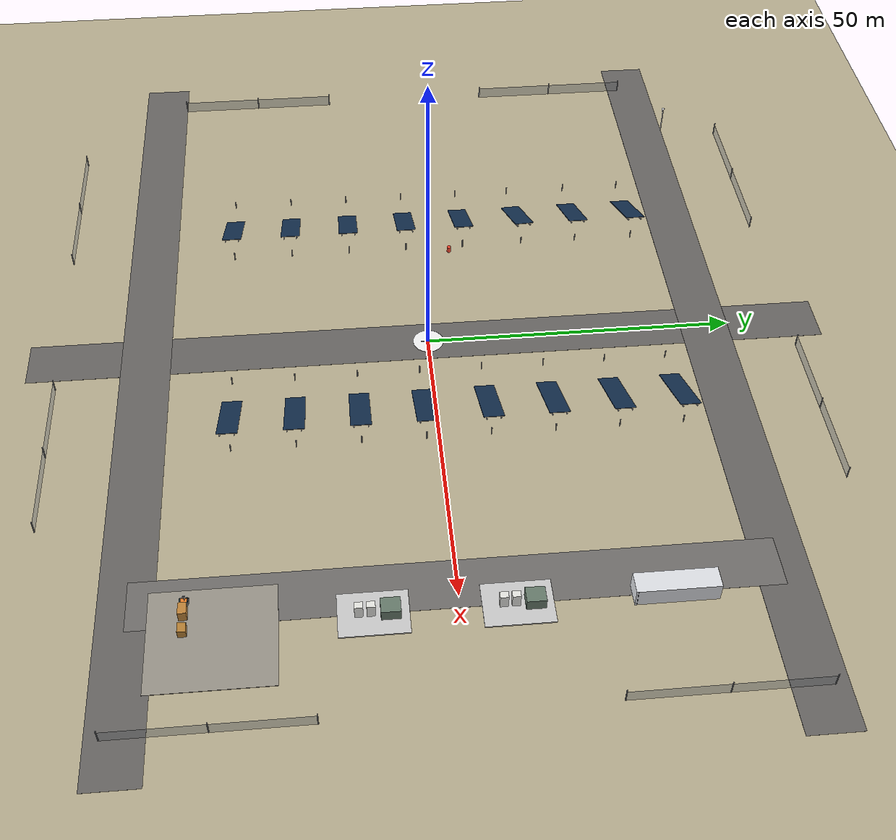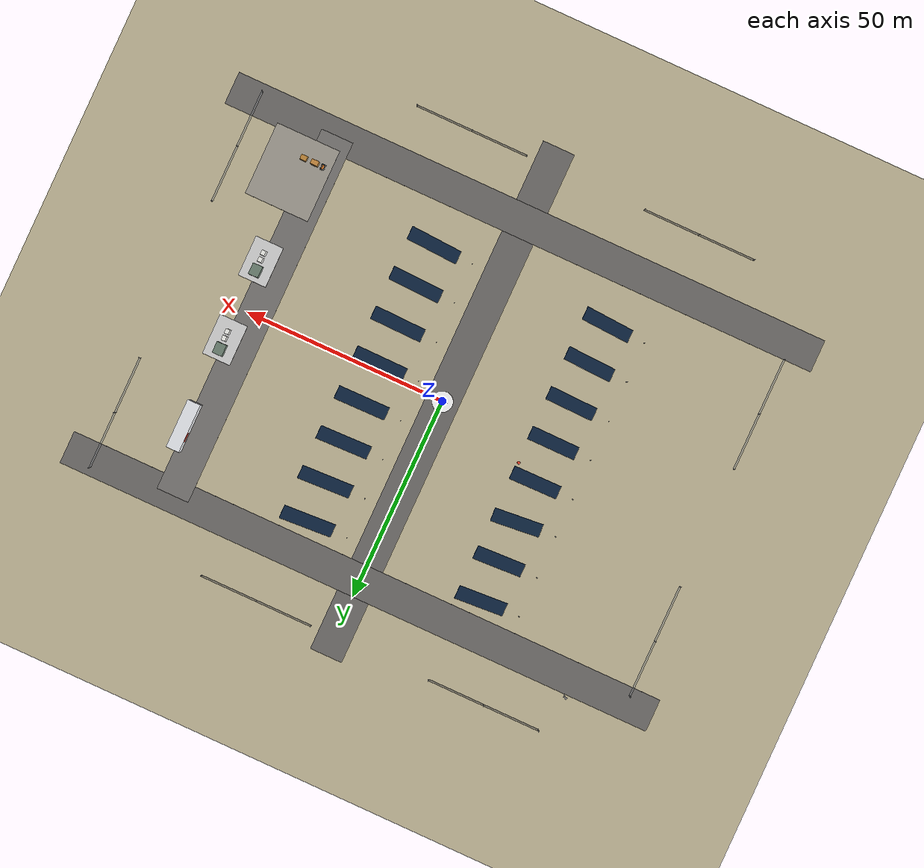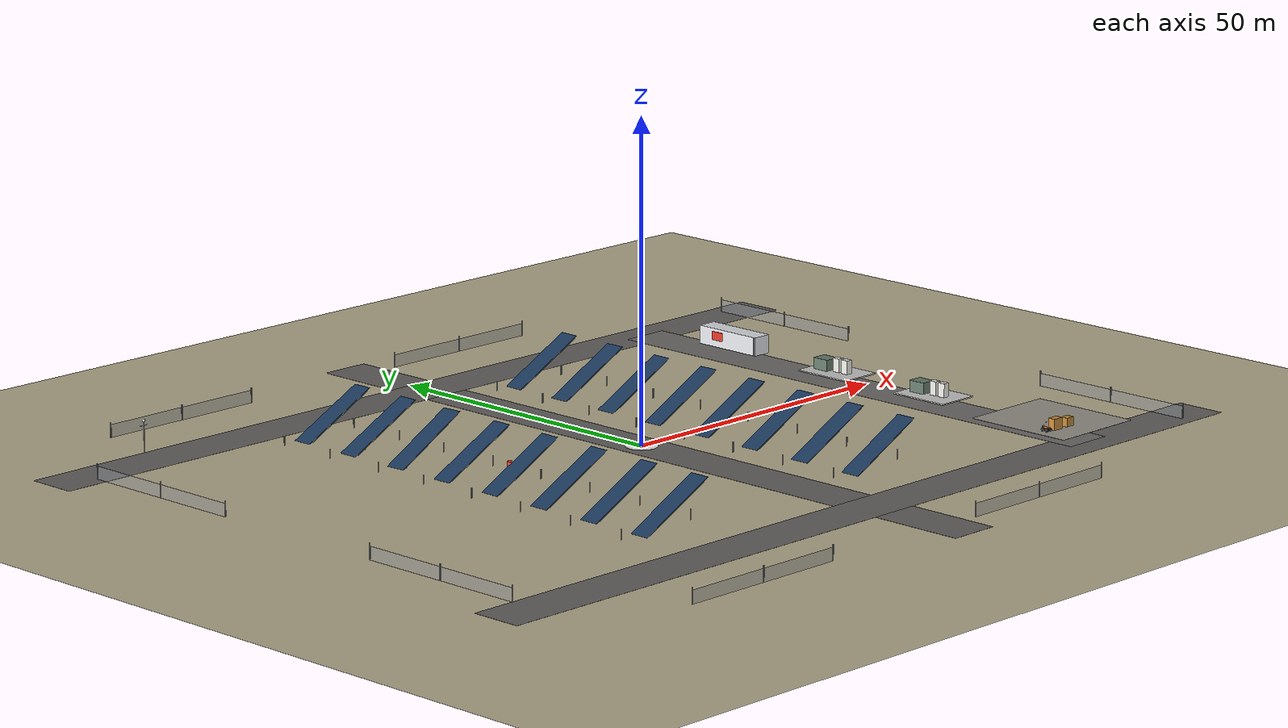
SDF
<sdf version="1.9">
 <world name="solar_farm_demo">
  <gravity>0 0 -9.8</gravity>
  <magnetic_field>6.0e-6 2.3e-5 -4.2e-5</magnetic_field>
  <atmosphere type="adiabatic"/>
  <plugin filename="gz-sim-physics-system" name="gz::sim::systems::Physics"/>
  <plugin filename="gz-sim-user-commands-system" name="gz::sim::systems::UserCommands"/>
  <plugin filename="gz-sim-scene-broadcaster-system" name="gz::sim::systems::SceneBroadcaster"/>
  <plugin filename="gz-sim-contact-system" name="gz::sim::systems::Contact"/>
  <plugin filename="gz-sim-imu-system" name="gz::sim::systems::Imu"/>
  <plugin filename="gz-sim-air-pressure-system" name="gz::sim::systems::AirPressure"/>
  <plugin filename="gz-sim-apply-link-wrench-system" name="gz::sim::systems::ApplyLinkWrench"/>
  <plugin filename="gz-sim-navsat-system" name="gz::sim::systems::NavSat"/>
  <plugin filename="gz-sim-sensors-system" name="gz::sim::systems::Sensors">
   <render_engine>ogre2</render_engine>
  </plugin>
  <scene>
   <ambient>0.8 0.8 0.8 1.0</ambient>
   <background>0.60 0.76 0.92 1.0</background>
   <shadows>true</shadows>
   <grid>false</grid>
  </scene>
  <light type="directional" name="sun">
   <pose>0 0 20 0 0 0</pose>
   <diffuse>0.9 0.9 0.9 1</diffuse>
   <specular>0.2 0.2 0.2 1</specular>
   <attenuation>
    <range>1000</range>
    <constant>0.9</constant>
    <linear>0.01</linear>
    <quadratic>0.001</quadratic>
   </attenuation>
   <direction>-0.35 0.2 -0.9</direction>
  </light>
  <model name="ground_plane">
   <static>true</static>
   <link name="ground_link">
    <collision name="collision">
     <geometry><plane><normal>0 0 1</normal><size>220 220</size></plane></geometry>
    </collision>
    <visual name="visual">
     <geometry><plane><normal>0 0 1</normal><size>220 220</size></plane></geometry>
     <material><ambient>0.72 0.69 0.56 1</ambient><diffuse>0.74 0.70 0.58 1</diffuse></material>
    </visual>
   </link>
  </model>
  <model name="service_loop_road">
   <static>true</static>
   <link name="road_link">
    <visual name="north_south_road">
     <pose>0 0 0.01 0 0 0</pose>
     <geometry><box><size>8 130 0.02</size></box></geometry>
     <material><ambient>0.36 0.35 0.34 1</ambient><diffuse>0.42 0.41 0.40 1</diffuse></material>
    </visual>
    <visual name="east_west_road_north">
     <pose>0 46 0.011 0 0 0</pose>
     <geometry><box><size>150 8 0.02</size></box></geometry>
     <material><ambient>0.36 0.35 0.34 1</ambient><diffuse>0.42 0.41 0.40 1</diffuse></material>
    </visual>
    <visual name="east_west_road_south">
     <pose>0 -46 0.011 0 0 0</pose>
     <geometry><box><size>150 8 0.02</size></box></geometry>
     <material><ambient>0.36 0.35 0.34 1</ambient><diffuse>0.42 0.41 0.40 1</diffuse></material>
    </visual>
    <visual name="spur_road_east">
     <pose>48 0 0.012 0 0 0</pose>
     <geometry><box><size>8 92 0.02</size></box></geometry>
     <material><ambient>0.39 0.38 0.37 1</ambient><diffuse>0.46 0.45 0.44 1</diffuse></material>
    </visual>
   </link>
  </model>
  <model name="uav_spawn_pad">
   <static>true</static>
   <link name="pad_link">
    <visual name="pad_base">
     <pose>0 0 0.015 0 0 0</pose>
     <geometry><cylinder><radius>2.5</radius><length>0.03</length></cylinder></geometry>
     <material><ambient>0.92 0.92 0.92 1</ambient><diffuse>0.98 0.98 0.98 1</diffuse></material>
    </visual>
    <visual name="pad_ring">
     <pose>0 0 0.02 0 0 0</pose>
     <geometry><cylinder><radius>2.15</radius><length>0.01</length></cylinder></geometry>
     <material><ambient>0.88 0.32 0.08 1</ambient><diffuse>0.96 0.40 0.10 1</diffuse></material>
    </visual>
    <visual name="pad_marker_x">
     <pose>0 0 0.03 0 0 0</pose>
     <geometry><box><size>2.4 0.18 0.02</size></box></geometry>
     <material><ambient>0.10 0.10 0.10 1</ambient><diffuse>0.16 0.16 0.16 1</diffuse></material>
    </visual>
    <visual name="pad_marker_y">
     <pose>0 0 0.03 0 0 1.5708</pose>
     <geometry><box><size>2.4 0.18 0.02</size></box></geometry>
     <material><ambient>0.10 0.10 0.10 1</ambient><diffuse>0.16 0.16 0.16 1</diffuse></material>
    </visual>
   </link>
  </model>
  <include>
   <uri>model://weather_station</uri>
   <name>weather_station_01</name>
   <pose>-54 50 0 0 0 0</pose>
  </include>
  <include>
   <uri>model://battery_container</uri>
   <name>battery_container_01</name>
   <pose>52 30 0 0 0 1.5708</pose>
  </include>
  <include>
   <uri>model://inspection_rover</uri>
   <name>inspection_rover_01</name>
   <pose>48 -38 0.05 0 0 1.5708</pose>
  </include>
  <include><uri>model://inverter_pad</uri><name>inverter_pad_01</name><pose>52 8 0 0 0 1.5708</pose></include>
  <include><uri>model://inverter_pad</uri><name>inverter_pad_02</name><pose>52 -12 0 0 0 1.5708</pose></include>
  <model name="maintenance_laydown">
   <static>true</static>
   <pose>54 -34 0 0 0 0</pose>
   <link name="laydown_link">
    <visual name="pad">
     <geometry><box><size>16 18 0.08</size></box></geometry>
     <material><ambient>0.57 0.55 0.52 1</ambient><diffuse>0.62 0.60 0.56 1</diffuse></material>
    </visual>
    <visual name="crate_01">
     <pose>-4 -4 0.9 0 0 0</pose>
     <geometry><box><size>1.8 1.2 1.8</size></box></geometry>
     <material><ambient>0.70 0.48 0.22 1</ambient><diffuse>0.78 0.54 0.24 1</diffuse></material>
    </visual>
    <visual name="crate_02">
     <pose>-1.2 -4 0.7 0 0 0</pose>
     <geometry><box><size>1.5 1.2 1.4</size></box></geometry>
     <material><ambient>0.68 0.47 0.20 1</ambient><diffuse>0.75 0.53 0.22 1</diffuse></material>
    </visual>
   </link>
  </model>
  <model name="anomaly_marker_row_06">
   <static>true</static>
   <pose>-22 5.5 0 0 0 0</pose>
   <link name="marker_link">
    <visual name="cone">
     <pose>0 0 0.5 0 0 0</pose>
     <geometry><cylinder><radius>0.35</radius><length>1.0</length></cylinder></geometry>
     <material><ambient>0.85 0.22 0.14 1</ambient><diffuse>0.95 0.28 0.18 1</diffuse></material>
    </visual>
   </link>
  </model>
  <include><uri>model://solar_panel_row</uri><name>panel_row_01</name><pose>-30 -32 0 0 0 0</pose></include>
  <include><uri>model://solar_panel_row</uri><name>panel_row_02</name><pose>-30 -22 0 0 0 0</pose></include>
  <include><uri>model://solar_panel_row</uri><name>panel_row_03</name><pose>-30 -12 0 0 0 0</pose></include>
  <include><uri>model://solar_panel_row</uri><name>panel_row_04</name><pose>-30 -2 0 0 0 0</pose></include>
  <include><uri>model://solar_panel_row</uri><name>panel_row_05</name><pose>-30 8 0 0 0 0</pose></include>
  <include><uri>model://solar_panel_row</uri><name>panel_row_06</name><pose>-30 18 0 0 0 0.06</pose></include>
  <include><uri>model://solar_panel_row</uri><name>panel_row_07</name><pose>-30 28 0 0 0 0</pose></include>
  <include><uri>model://solar_panel_row</uri><name>panel_row_08</name><pose>-30 38 0 0 0 0</pose></include>
  <include><uri>model://solar_panel_row</uri><name>panel_row_09</name><pose>14 -32 0 0 0 0</pose></include>
  <include><uri>model://solar_panel_row</uri><name>panel_row_10</name><pose>14 -22 0 0 0 0</pose></include>
  <include><uri>model://solar_panel_row</uri><name>panel_row_11</name><pose>14 -12 0 0 0 0</pose></include>
  <include><uri>model://solar_panel_row</uri><name>panel_row_12</name><pose>14 -2 0 0 0 0</pose></include>
  <include><uri>model://solar_panel_row</uri><name>panel_row_13</name><pose>14 8 0 0 0 0</pose></include>
  <include><uri>model://solar_panel_row</uri><name>panel_row_14</name><pose>14 18 0 0 0 0</pose></include>
  <include><uri>model://solar_panel_row</uri><name>panel_row_15</name><pose>14 28 0 0 0 0</pose></include>
  <include><uri>model://solar_panel_row</uri><name>panel_row_16</name><pose>14 38 0 0 0 0</pose></include>
  <include><uri>model://fence_segment</uri><name>north_fence_west</name><pose>-38 60 0 0 0 0</pose></include>
  <include><uri>model://fence_segment</uri><name>north_fence_east</name><pose>20 60 0 0 0 0</pose></include>
  <include><uri>model://fence_segment</uri><name>south_fence_west</name><pose>-38 -60 0 0 0 0</pose></include>
  <include><uri>model://fence_segment</uri><name>south_fence_east</name><pose>20 -60 0 0 0 0</pose></include>
  <include>
   <uri>model://fence_segment</uri>
   <name>west_fence_north</name>
   <pose>-68 30 0 0 0 1.5708</pose>
  </include>
  <include>
   <uri>model://fence_segment</uri>
   <name>west_fence_south</name>
   <pose>-68 -28 0 0 0 1.5708</pose>
  </include>
  <include>
   <uri>model://fence_segment</uri>
   <name>east_fence_upper</name>
   <pose>68 34 0 0 0 1.5708</pose>
  </include>
  <include>
   <uri>model://fence_segment</uri>
   <name>east_fence_lower</name>
   <pose>68 -34 0 0 0 1.5708</pose>
  </include>
 </world>
</sdf>

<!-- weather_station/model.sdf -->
<sdf version="1.9">
  <model name="weather_station">
    <static>true</static>
    <link name="station_link">
      <collision name="mast_collision">
        <pose>0 0 2.4 0 0 0</pose>
        <geometry>
          <cylinder>
            <radius>0.08</radius>
            <length>4.8</length>
          </cylinder>
        </geometry>
      </collision>

      <visual name="mast_visual">
        <pose>0 0 2.4 0 0 0</pose>
        <geometry>
          <cylinder>
            <radius>0.08</radius>
            <length>4.8</length>
          </cylinder>
        </geometry>
        <material>
          <ambient>0.70 0.70 0.71 1</ambient>
          <diffuse>0.82 0.82 0.83 1</diffuse>
        </material>
      </visual>

      <visual name="sensor_head">
        <pose>0 0 4.95 0 0 0</pose>
        <geometry>
          <sphere>
            <radius>0.25</radius>
          </sphere>
        </geometry>
        <material>
          <ambient>0.94 0.94 0.94 1</ambient>
          <diffuse>0.98 0.98 0.98 1</diffuse>
        </material>
      </visual>

      <visual name="cross_arm">
        <pose>0 0 4.2 0 0 0</pose>
        <geometry>
          <box>
            <size>1.4 0.08 0.08</size>
          </box>
        </geometry>
        <material>
          <ambient>0.78 0.78 0.80 1</ambient>
          <diffuse>0.88 0.88 0.90 1</diffuse>
        </material>
      </visual>
    </link>
  </model>
</sdf>

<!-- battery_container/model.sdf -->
<sdf version="1.9">
  <model name="battery_container">
    <static>true</static>
    <link name="container_link">
      <collision name="container_collision">
        <pose>0 0 1.5 0 0 0</pose>
        <geometry>
          <box>
            <size>12 3.2 3.0</size>
          </box>
        </geometry>
      </collision>

      <visual name="container_visual">
        <pose>0 0 1.5 0 0 0</pose>
        <geometry>
          <box>
            <size>12 3.2 3.0</size>
          </box>
        </geometry>
        <material>
          <ambient>0.83 0.84 0.86 1</ambient>
          <diffuse>0.90 0.91 0.93 1</diffuse>
        </material>
      </visual>

      <visual name="door_line_left">
        <pose>-5.7 0 1.5 0 0 0</pose>
        <geometry>
          <box>
            <size>0.05 3.25 2.9</size>
          </box>
        </geometry>
        <material>
          <ambient>0.25 0.26 0.28 1</ambient>
          <diffuse>0.30 0.31 0.33 1</diffuse>
        </material>
      </visual>

      <visual name="thermal_alert_patch">
        <pose>2.2 1.63 1.8 0 0 0</pose>
        <geometry>
          <box>
            <size>2.2 0.04 1.4</size>
          </box>
        </geometry>
        <material>
          <ambient>0.76 0.16 0.12 1</ambient>
          <diffuse>0.88 0.22 0.16 1</diffuse>
          <emissive>0.25 0.04 0.02 1</emissive>
        </material>
      </visual>
    </link>
  </model>
</sdf>

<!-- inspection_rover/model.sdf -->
<sdf version="1.9">
  <model name="inspection_rover">
    <static>false</static>
    <self_collide>false</self_collide>

    <link name="base_link">
      <pose>0 0 0.32 0 0 0</pose>
      <inertial>
        <mass>38.0</mass>
        <inertia>
          <ixx>2.0</ixx>
          <iyy>3.0</iyy>
          <izz>3.8</izz>
          <ixy>0.0</ixy>
          <ixz>0.0</ixz>
          <iyz>0.0</iyz>
        </inertia>
      </inertial>

      <collision name="chassis_collision">
        <geometry>
          <box>
            <size>1.25 0.82 0.34</size>
          </box>
        </geometry>
      </collision>

      <visual name="chassis_visual">
        <geometry>
          <box>
            <size>1.25 0.82 0.34</size>
          </box>
        </geometry>
        <material>
          <ambient>0.10 0.14 0.15 1</ambient>
          <diffuse>0.13 0.20 0.21 1</diffuse>
          <specular>0.05 0.07 0.08 1</specular>
        </material>
      </visual>

      <visual name="top_deck">
        <pose>0.05 0 0.23 0 0 0</pose>
        <geometry>
          <box>
            <size>0.95 0.62 0.10</size>
          </box>
        </geometry>
        <material>
          <ambient>0.88 0.46 0.12 1</ambient>
          <diffuse>0.96 0.52 0.16 1</diffuse>
        </material>
      </visual>

      <visual name="front_bumper">
        <pose>0.70 0 0.0 0 0 0</pose>
        <geometry>
          <box>
            <size>0.10 0.92 0.18</size>
          </box>
        </geometry>
        <material>
          <ambient>0.04 0.04 0.04 1</ambient>
          <diffuse>0.06 0.06 0.06 1</diffuse>
        </material>
      </visual>

      <sensor name="base_imu" type="imu">
        <pose>0 0 0.28 0 0 0</pose>
        <topic>/ugv_1/imu</topic>
        <always_on>true</always_on>
        <update_rate>100</update_rate>
      </sensor>
    </link>

    <link name="left_front_wheel">
      <pose>0.42 0.48 0.22 1.5708 0 0</pose>
      <inertial>
        <mass>2.0</mass>
        <inertia>
          <ixx>0.04</ixx>
          <iyy>0.04</iyy>
          <izz>0.04</izz>
          <ixy>0.0</ixy>
          <ixz>0.0</ixz>
          <iyz>0.0</iyz>
        </inertia>
      </inertial>
      <collision name="collision">
        <geometry>
          <cylinder>
            <radius>0.22</radius>
            <length>0.16</length>
          </cylinder>
        </geometry>
        <surface>
          <friction>
            <ode>
              <mu>1.0</mu>
              <mu2>1.0</mu2>
            </ode>
          </friction>
        </surface>
      </collision>
      <visual name="visual">
        <geometry>
          <cylinder>
            <radius>0.22</radius>
            <length>0.16</length>
          </cylinder>
        </geometry>
        <material>
          <ambient>0.02 0.02 0.02 1</ambient>
          <diffuse>0.03 0.03 0.03 1</diffuse>
        </material>
      </visual>
    </link>

    <link name="left_rear_wheel">
      <pose>-0.42 0.48 0.22 1.5708 0 0</pose>
      <inertial>
        <mass>2.0</mass>
        <inertia>
          <ixx>0.04</ixx>
          <iyy>0.04</iyy>
          <izz>0.04</izz>
          <ixy>0.0</ixy>
          <ixz>0.0</ixz>
          <iyz>0.0</iyz>
        </inertia>
      </inertial>
      <collision name="collision">
        <geometry>
          <cylinder>
            <radius>0.22</radius>
            <length>0.16</length>
          </cylinder>
        </geometry>
        <surface>
          <friction>
            <ode>
              <mu>1.0</mu>
              <mu2>1.0</mu2>
            </ode>
          </friction>
        </surface>
      </collision>
      <visual name="visual">
        <geometry>
          <cylinder>
            <radius>0.22</radius>
            <length>0.16</length>
          </cylinder>
        </geometry>
        <material>
          <ambient>0.02 0.02 0.02 1</ambient>
          <diffuse>0.03 0.03 0.03 1</diffuse>
        </material>
      </visual>
    </link>

    <link name="right_front_wheel">
      <pose>0.42 -0.48 0.22 1.5708 0 0</pose>
      <inertial>
        <mass>2.0</mass>
        <inertia>
          <ixx>0.04</ixx>
          <iyy>0.04</iyy>
          <izz>0.04</izz>
          <ixy>0.0</ixy>
          <ixz>0.0</ixz>
          <iyz>0.0</iyz>
        </inertia>
      </inertial>
      <collision name="collision">
        <geometry>
          <cylinder>
            <radius>0.22</radius>
            <length>0.16</length>
          </cylinder>
        </geometry>
        <surface>
          <friction>
            <ode>
              <mu>1.0</mu>
              <mu2>1.0</mu2>
            </ode>
          </friction>
        </surface>
      </collision>
      <visual name="visual">
        <geometry>
          <cylinder>
            <radius>0.22</radius>
            <length>0.16</length>
          </cylinder>
        </geometry>
        <material>
          <ambient>0.02 0.02 0.02 1</ambient>
          <diffuse>0.03 0.03 0.03 1</diffuse>
        </material>
      </visual>
    </link>

    <link name="right_rear_wheel">
      <pose>-0.42 -0.48 0.22 1.5708 0 0</pose>
      <inertial>
        <mass>2.0</mass>
        <inertia>
          <ixx>0.04</ixx>
          <iyy>0.04</iyy>
          <izz>0.04</izz>
          <ixy>0.0</ixy>
          <ixz>0.0</ixz>
          <iyz>0.0</iyz>
        </inertia>
      </inertial>
      <collision name="collision">
        <geometry>
          <cylinder>
            <radius>0.22</radius>
            <length>0.16</length>
          </cylinder>
        </geometry>
        <surface>
          <friction>
            <ode>
              <mu>1.0</mu>
              <mu2>1.0</mu2>
            </ode>
          </friction>
        </surface>
      </collision>
      <visual name="visual">
        <geometry>
          <cylinder>
            <radius>0.22</radius>
            <length>0.16</length>
          </cylinder>
        </geometry>
        <material>
          <ambient>0.02 0.02 0.02 1</ambient>
          <diffuse>0.03 0.03 0.03 1</diffuse>
        </material>
      </visual>
    </link>

    <joint name="left_front_wheel_joint" type="revolute">
      <parent>base_link</parent>
      <child>left_front_wheel</child>
      <axis>
        <xyz>0 1 0</xyz>
        <limit>
          <lower>-1e16</lower>
          <upper>1e16</upper>
        </limit>
      </axis>
    </joint>

    <joint name="left_rear_wheel_joint" type="revolute">
      <parent>base_link</parent>
      <child>left_rear_wheel</child>
      <axis>
        <xyz>0 1 0</xyz>
        <limit>
          <lower>-1e16</lower>
          <upper>1e16</upper>
        </limit>
      </axis>
    </joint>

    <joint name="right_front_wheel_joint" type="revolute">
      <parent>base_link</parent>
      <child>right_front_wheel</child>
      <axis>
        <xyz>0 1 0</xyz>
        <limit>
          <lower>-1e16</lower>
          <upper>1e16</upper>
        </limit>
      </axis>
    </joint>

    <joint name="right_rear_wheel_joint" type="revolute">
      <parent>base_link</parent>
      <child>right_rear_wheel</child>
      <axis>
        <xyz>0 1 0</xyz>
        <limit>
          <lower>-1e16</lower>
          <upper>1e16</upper>
        </limit>
      </axis>
    </joint>

    <link name="sensor_mast">
      <pose>0.12 0 0.95 0 0 0</pose>
      <inertial>
        <mass>1.5</mass>
        <inertia>
          <ixx>0.08</ixx>
          <iyy>0.08</iyy>
          <izz>0.02</izz>
          <ixy>0.0</ixy>
          <ixz>0.0</ixz>
          <iyz>0.0</iyz>
        </inertia>
      </inertial>
      <collision name="mast_collision">
        <geometry>
          <cylinder>
            <radius>0.045</radius>
            <length>0.9</length>
          </cylinder>
        </geometry>
      </collision>
      <visual name="mast_visual">
        <geometry>
          <cylinder>
            <radius>0.045</radius>
            <length>0.9</length>
          </cylinder>
        </geometry>
        <material>
          <ambient>0.65 0.65 0.66 1</ambient>
          <diffuse>0.78 0.78 0.80 1</diffuse>
        </material>
      </visual>
    </link>

    <joint name="sensor_mast_joint" type="fixed">
      <parent>base_link</parent>
      <child>sensor_mast</child>
    </joint>

    <link name="lidar_link">
      <pose>0.12 0 1.45 0 0 0</pose>
      <inertial>
        <mass>0.7</mass>
        <inertia>
          <ixx>0.01</ixx>
          <iyy>0.01</iyy>
          <izz>0.01</izz>
          <ixy>0.0</ixy>
          <ixz>0.0</ixz>
          <iyz>0.0</iyz>
        </inertia>
      </inertial>
      <collision name="lidar_collision">
        <geometry>
          <cylinder>
            <radius>0.16</radius>
            <length>0.12</length>
          </cylinder>
        </geometry>
      </collision>
      <visual name="lidar_visual">
        <geometry>
          <cylinder>
            <radius>0.16</radius>
            <length>0.12</length>
          </cylinder>
        </geometry>
        <material>
          <ambient>0.02 0.02 0.025 1</ambient>
          <diffuse>0.05 0.05 0.06 1</diffuse>
        </material>
      </visual>
      <sensor name="lidar" type="gpu_lidar">
        <pose>0 0 0.08 0 0 0</pose>
        <topic>/ugv_1/scan</topic>
        <always_on>true</always_on>
        <update_rate>10</update_rate>
        <lidar>
          <scan>
            <horizontal>
              <samples>720</samples>
              <resolution>1</resolution>
              <min_angle>-3.14159</min_angle>
              <max_angle>3.14159</max_angle>
            </horizontal>
          </scan>
          <range>
            <min>0.12</min>
            <max>40.0</max>
            <resolution>0.02</resolution>
          </range>
          <noise>
            <type>gaussian</type>
            <mean>0.0</mean>
            <stddev>0.01</stddev>
          </noise>
        </lidar>
      </sensor>
    </link>

    <joint name="lidar_joint" type="fixed">
      <parent>sensor_mast</parent>
      <child>lidar_link</child>
    </joint>

    <link name="camera_link">
      <pose>0.72 0 0.72 0 0 0</pose>
      <inertial>
        <mass>0.9</mass>
        <inertia>
          <ixx>0.02</ixx>
          <iyy>0.02</iyy>
          <izz>0.02</izz>
          <ixy>0.0</ixy>
          <ixz>0.0</ixz>
          <iyz>0.0</iyz>
        </inertia>
      </inertial>
      <collision name="camera_collision">
        <geometry>
          <box>
            <size>0.18 0.36 0.16</size>
          </box>
        </geometry>
      </collision>
      <visual name="camera_housing">
        <geometry>
          <box>
            <size>0.18 0.36 0.16</size>
          </box>
        </geometry>
        <material>
          <ambient>0.08 0.08 0.085 1</ambient>
          <diffuse>0.11 0.11 0.12 1</diffuse>
        </material>
      </visual>
      <visual name="camera_lens">
        <pose>0.10 0 0 0 1.5708 0</pose>
        <geometry>
          <cylinder>
            <radius>0.065</radius>
            <length>0.035</length>
          </cylinder>
        </geometry>
        <material>
          <ambient>0.01 0.01 0.012 1</ambient>
          <diffuse>0.02 0.02 0.025 1</diffuse>
        </material>
      </visual>
      <sensor name="rgb_camera" type="camera">
        <pose>0.11 0 0 0 0 0</pose>
        <topic>/ugv_1/camera/image_raw</topic>
        <always_on>true</always_on>
        <update_rate>20</update_rate>
        <camera>
          <horizontal_fov>1.047</horizontal_fov>
          <image>
            <width>1280</width>
            <height>720</height>
            <format>R8G8B8</format>
          </image>
          <clip>
            <near>0.1</near>
            <far>80.0</far>
          </clip>
        </camera>
      </sensor>
    </link>

    <joint name="camera_joint" type="fixed">
      <parent>base_link</parent>
      <child>camera_link</child>
    </joint>

    <link name="depth_camera_link">
      <pose>0.70 0 0.52 0 0 0</pose>
      <inertial>
        <mass>0.8</mass>
        <inertia>
          <ixx>0.02</ixx>
          <iyy>0.02</iyy>
          <izz>0.02</izz>
          <ixy>0.0</ixy>
          <ixz>0.0</ixz>
          <iyz>0.0</iyz>
        </inertia>
      </inertial>
      <collision name="depth_camera_collision">
        <geometry>
          <box>
            <size>0.16 0.30 0.12</size>
          </box>
        </geometry>
      </collision>
      <visual name="depth_camera_housing">
        <geometry>
          <box>
            <size>0.16 0.30 0.12</size>
          </box>
        </geometry>
        <material>
          <ambient>0.16 0.16 0.17 1</ambient>
          <diffuse>0.22 0.22 0.23 1</diffuse>
        </material>
      </visual>
      <sensor name="depth_camera" type="depth_camera">
        <pose>0.09 0 0 0 0 0</pose>
        <topic>/ugv_1/depth/image_raw</topic>
        <always_on>true</always_on>
        <update_rate>15</update_rate>
        <camera>
          <horizontal_fov>1.047</horizontal_fov>
          <image>
            <width>640</width>
            <height>480</height>
            <format>R_FLOAT32</format>
          </image>
          <clip>
            <near>0.2</near>
            <far>30.0</far>
          </clip>
        </camera>
      </sensor>
    </link>

    <joint name="depth_camera_joint" type="fixed">
      <parent>base_link</parent>
      <child>depth_camera_link</child>
    </joint>

    <plugin filename="gz-sim-diff-drive-system" name="gz::sim::systems::DiffDrive">
      <left_joint>left_front_wheel_joint</left_joint>
      <left_joint>left_rear_wheel_joint</left_joint>
      <right_joint>right_front_wheel_joint</right_joint>
      <right_joint>right_rear_wheel_joint</right_joint>
      <wheel_separation>0.96</wheel_separation>
      <wheel_radius>0.22</wheel_radius>
      <max_linear_acceleration>1.0</max_linear_acceleration>
      <min_linear_acceleration>-1.0</min_linear_acceleration>
      <max_angular_acceleration>1.5</max_angular_acceleration>
      <min_angular_acceleration>-1.5</min_angular_acceleration>
      <topic>/ugv_1/cmd_vel</topic>
      <odom_topic>/ugv_1/odom</odom_topic>
      <tf_topic>/ugv_1/tf</tf_topic>
      <frame_id>ugv_1/odom</frame_id>
      <child_frame_id>ugv_1/base_link</child_frame_id>
      <odom_publish_frequency>30</odom_publish_frequency>
    </plugin>
  </model>
</sdf>

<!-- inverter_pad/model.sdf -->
<sdf version="1.9">
  <model name="inverter_pad">
    <static>true</static>
    <link name="pad_link">
      <collision name="pad_collision">
        <pose>0 0 0.1 0 0 0</pose>
        <geometry>
          <box>
            <size>10 7 0.2</size>
          </box>
        </geometry>
      </collision>

      <visual name="pad_visual">
        <pose>0 0 0.1 0 0 0</pose>
        <geometry>
          <box>
            <size>10 7 0.2</size>
          </box>
        </geometry>
        <material>
          <ambient>0.72 0.72 0.72 1</ambient>
          <diffuse>0.82 0.82 0.82 1</diffuse>
        </material>
      </visual>

      <visual name="cabinet_a">
        <pose>-2.0 0.0 1.2 0 0 0</pose>
        <geometry>
          <box>
            <size>1.2 1.0 2.4</size>
          </box>
        </geometry>
        <material>
          <ambient>0.88 0.88 0.86 1</ambient>
          <diffuse>0.94 0.94 0.92 1</diffuse>
        </material>
      </visual>

      <visual name="cabinet_b">
        <pose>-0.3 0.0 1.2 0 0 0</pose>
        <geometry>
          <box>
            <size>1.2 1.0 2.4</size>
          </box>
        </geometry>
        <material>
          <ambient>0.88 0.88 0.86 1</ambient>
          <diffuse>0.94 0.94 0.92 1</diffuse>
        </material>
      </visual>

      <visual name="transformer">
        <pose>2.4 0 1.0 0 0 0</pose>
        <geometry>
          <box>
            <size>2.8 2.4 2.0</size>
          </box>
        </geometry>
        <material>
          <ambient>0.34 0.42 0.36 1</ambient>
          <diffuse>0.42 0.50 0.44 1</diffuse>
        </material>
      </visual>

      <visual name="hotspot_marker">
        <pose>3.8 1.4 0.15 0 0 0</pose>
        <geometry>
          <cylinder>
            <radius>0.5</radius>
            <length>0.05</length>
          </cylinder>
        </geometry>
        <material>
          <ambient>0.80 0.18 0.12 1</ambient>
          <diffuse>0.92 0.24 0.18 1</diffuse>
          <emissive>0.32 0.06 0.04 1</emissive>
        </material>
      </visual>
    </link>
  </model>
</sdf>

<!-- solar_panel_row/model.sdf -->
<sdf version="1.9">
  <model name="solar_panel_row">
    <static>true</static>
    <link name="row_link">
      <collision name="frame_collision">
        <pose>0 0 0.6 0 0 0</pose>
        <geometry>
          <box>
            <size>20 2.4 1.2</size>
          </box>
        </geometry>
      </collision>

      <visual name="panel_surface">
        <pose>0 0 1.55 0 -0.48 0</pose>
        <geometry>
          <box>
            <size>20 3.2 0.08</size>
          </box>
        </geometry>
        <material>
          <ambient>0.08 0.16 0.26 1</ambient>
          <diffuse>0.10 0.22 0.36 1</diffuse>
          <specular>0.18 0.18 0.18 1</specular>
        </material>
      </visual>

      <visual name="frame_beam_left">
        <pose>0 -1.1 1.05 0 -0.48 0</pose>
        <geometry>
          <box>
            <size>20 0.12 0.12</size>
          </box>
        </geometry>
        <material>
          <ambient>0.55 0.55 0.57 1</ambient>
          <diffuse>0.66 0.66 0.68 1</diffuse>
        </material>
      </visual>

      <visual name="frame_beam_right">
        <pose>0 1.1 1.05 0 -0.48 0</pose>
        <geometry>
          <box>
            <size>20 0.12 0.12</size>
          </box>
        </geometry>
        <material>
          <ambient>0.55 0.55 0.57 1</ambient>
          <diffuse>0.66 0.66 0.68 1</diffuse>
        </material>
      </visual>

      <visual name="support_1">
        <pose>-7 0 0.75 0 0 0</pose>
        <geometry>
          <cylinder>
            <radius>0.08</radius>
            <length>1.5</length>
          </cylinder>
        </geometry>
        <material>
          <ambient>0.50 0.50 0.50 1</ambient>
          <diffuse>0.60 0.60 0.60 1</diffuse>
        </material>
      </visual>

      <visual name="support_2">
        <pose>0 0 0.75 0 0 0</pose>
        <geometry>
          <cylinder>
            <radius>0.08</radius>
            <length>1.5</length>
          </cylinder>
        </geometry>
        <material>
          <ambient>0.50 0.50 0.50 1</ambient>
          <diffuse>0.60 0.60 0.60 1</diffuse>
        </material>
      </visual>

      <visual name="support_3">
        <pose>7 0 0.75 0 0 0</pose>
        <geometry>
          <cylinder>
            <radius>0.08</radius>
            <length>1.5</length>
          </cylinder>
        </geometry>
        <material>
          <ambient>0.50 0.50 0.50 1</ambient>
          <diffuse>0.60 0.60 0.60 1</diffuse>
        </material>
      </visual>
    </link>
  </model>
</sdf>

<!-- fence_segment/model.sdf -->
<sdf version="1.9">
  <model name="fence_segment">
    <static>true</static>
    <link name="fence_link">
      <collision name="panel_collision">
        <pose>0 0 1.0 0 0 0</pose>
        <geometry>
          <box>
            <size>28 0.08 2.0</size>
          </box>
        </geometry>
      </collision>

      <visual name="mesh_panel">
        <pose>0 0 1.0 0 0 0</pose>
        <geometry>
          <box>
            <size>28 0.03 2.0</size>
          </box>
        </geometry>
        <material>
          <ambient>0.48 0.50 0.52 0.45</ambient>
          <diffuse>0.58 0.60 0.62 0.45</diffuse>
        </material>
        <transparency>0.45</transparency>
      </visual>

      <visual name="post_left">
        <pose>-14 0 1.2 0 0 0</pose>
        <geometry>
          <cylinder>
            <radius>0.08</radius>
            <length>2.4</length>
          </cylinder>
        </geometry>
        <material>
          <ambient>0.44 0.45 0.47 1</ambient>
          <diffuse>0.54 0.55 0.57 1</diffuse>
        </material>
      </visual>

      <visual name="post_center">
        <pose>0 0 1.2 0 0 0</pose>
        <geometry>
          <cylinder>
            <radius>0.08</radius>
            <length>2.4</length>
          </cylinder>
        </geometry>
        <material>
          <ambient>0.44 0.45 0.47 1</ambient>
          <diffuse>0.54 0.55 0.57 1</diffuse>
        </material>
      </visual>

      <visual name="post_right">
        <pose>14 0 1.2 0 0 0</pose>
        <geometry>
          <cylinder>
            <radius>0.08</radius>
            <length>2.4</length>
          </cylinder>
        </geometry>
        <material>
          <ambient>0.44 0.45 0.47 1</ambient>
          <diffuse>0.54 0.55 0.57 1</diffuse>
        </material>
      </visual>
    </link>
  </model>
</sdf>
